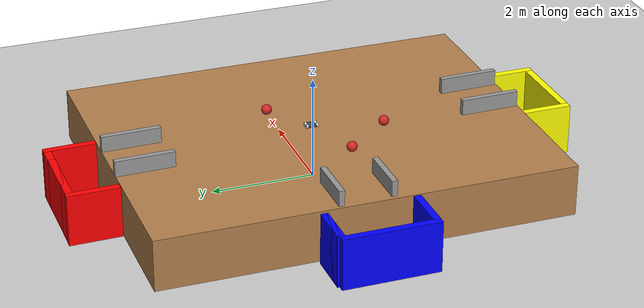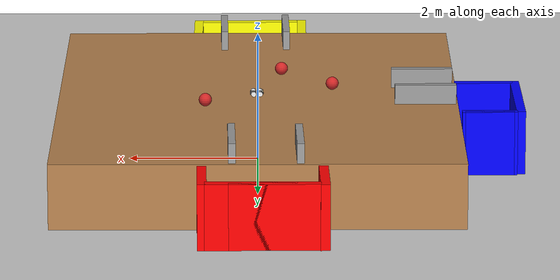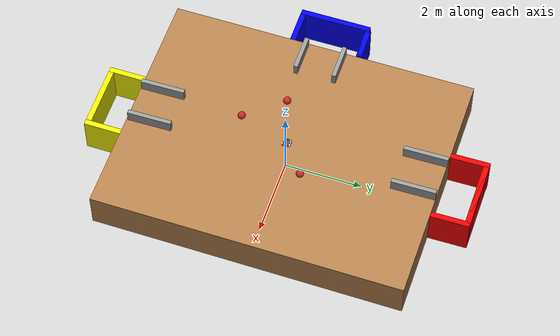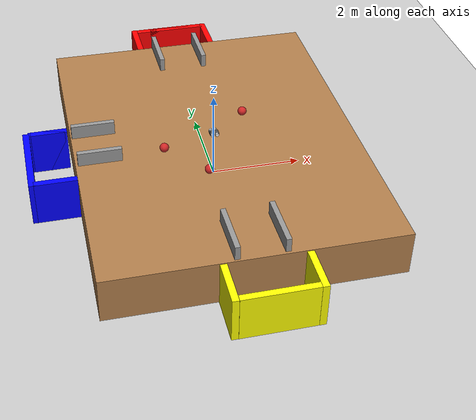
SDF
<sdf version="1.6">
 <world name="default">
  <light name="sun" type="directional">
   <pose>0 0 10 0 -0 0</pose>
   <diffuse>0.8 0.8 0.8 1</diffuse>
   <specular>0.2 0.2 0.2 1</specular>
   <attenuation>
    <range>1000</range>
    <constant>0.9</constant>
    <linear>0.01</linear>
    <quadratic>0.001</quadratic>
   </attenuation>
   <direction>-0.5 0.1 -0.9</direction>
  </light>
  <model name="ground_plane">
   <static>1</static>
   <link name="link">
    <collision name="collision">
     <geometry><plane><normal>0 0 1</normal><size>100 100</size></plane></geometry>
     <surface><friction><ode><mu>100</mu><mu2>50</mu2></ode></friction></surface>
    </collision>
    <visual name="visual">
     <cast_shadows>0</cast_shadows>
     <geometry><plane><normal>0 0 1</normal><size>100 100</size></plane></geometry>
     <material>
      <script><uri>file://media/materials/scripts/gazebo.material</uri><name>Gazebo/Grey</name></script>
     </material>
    </visual>
   </link>
  </model>
  <gravity>0 0 -9.8</gravity>
  <magnetic_field>6e-06 2.3e-05 -4.2e-05</magnetic_field>
  <atmosphere type="adiabatic"/>
  <physics name="default_physics" default="0" type="ode">
   <max_step_size>0.001</max_step_size>
   <real_time_factor>1</real_time_factor>
   <real_time_update_rate>1000</real_time_update_rate>
  </physics>
  <scene><ambient>0.4 0.4 0.4 1</ambient><background>0.7 0.7 0.7 1</background><shadows>1</shadows></scene>
  <spherical_coordinates>
   <surface_model>EARTH_WGS84</surface_model>
   <latitude_deg>0</latitude_deg>
   <longitude_deg>0</longitude_deg>
   <elevation>0</elevation>
   <heading_deg>0</heading_deg>
  </spherical_coordinates>
  <model name="myrobot">
   <link name="base_link">
    <inertial>
     <pose>1e-06 0 1e-06 0 -0 0</pose>
     <mass>1.00001</mass>
     <inertia><ixx>1</ixx><ixy>0</ixy><ixz>-5.39995e-08</ixz><iyy>1</iyy><iyz>0</iyz><izz>1</izz></inertia>
    </inertial>
    <collision name="base_link_collision">
     <geometry><box><size>0.205 0.155 0.02</size></box></geometry>
    </collision>
    <collision name="base_link_fixed_joint_lump__camera_link_collision_1">
     <pose>0.09 0 0.06 0 -0 0</pose>
     <geometry><box><size>0.01 0.05 0.05</size></box></geometry>
    </collision>
    <visual name="base_link_visual">
     <pose>0 0 0.04 0 -0 0</pose>
     <geometry><box><size>0.205 0.155 0.02</size></box></geometry>
     <material>
      <script><name>Gazebo/Road</name><uri>file://media/materials/scripts/gazebo.material</uri></script>
     </material>
    </visual>
    <visual name="base_link_fixed_joint_lump__camera_link_visual_1">
     <pose>0.09 0 0.06 0 -0 0</pose>
     <geometry><box><size>0.01 0.05 0.05</size></box></geometry>
     <material>
      <script><name>Gazebo/Residential</name><uri>file://media/materials/scripts/gazebo.material</uri></script>
     </material>
    </visual>
    <sensor name="camera1" type="camera">
     <update_rate>30</update_rate>
     <camera name="head">
      <horizontal_fov>1.08559</horizontal_fov>
      <image><width>320</width><height>240</height><format>R8G8B8</format></image>
      <clip><near>0.01</near><far>10</far></clip>
      <noise><type>gaussian</type><mean>0</mean><stddev>0.007</stddev></noise>
     </camera>
     <plugin name="camera_controller" filename="libgazebo_ros_camera.so">
      <alwaysOn>true</alwaysOn>
      <updateRate>0.0</updateRate>
      <cameraName>rrbot/camera1</cameraName>
      <imageTopicName>image_raw</imageTopicName>
      <cameraInfoTopicName>camera_info</cameraInfoTopicName>
      <frameName>camera_link</frameName>
      <hackBaseline>0.07</hackBaseline>
      <distortionK1>0.0</distortionK1>
      <distortionK2>0.0</distortionK2>
      <distortionK3>0.0</distortionK3>
      <distortionT1>0.0</distortionT1>
      <distortionT2>0.0</distortionT2>
      <robotNamespace>/</robotNamespace>
     </plugin>
     <pose>0.09 0 0.06 0 -0 0</pose>
    </sensor>
   </link>
   <link name="wheel_1">
    <pose>0.05 0.098 0.04 0 -0 0</pose>
    <inertial>
     <mass>0.01</mass>
     <inertia><ixx>1</ixx><ixy>0</ixy><ixz>0</ixz><iyy>1</iyy><iyz>0</iyz><izz>1</izz></inertia>
    </inertial>
    <collision name="wheel_1_collision">
     <geometry><cylinder><length>0.036</length><radius>0.04</radius></cylinder></geometry>
    </collision>
    <visual name="wheel_1_visual">
     <pose>0 0 0 3.14159 1.57079 -1.57089</pose>
     <geometry><cylinder><length>0.036</length><radius>0.04</radius></cylinder></geometry>
     <material>
      <script><name>Gazebo/White</name><uri>file://media/materials/scripts/gazebo.material</uri></script>
     </material>
    </visual>
   </link>
   <joint name="base_to_wheel1" type="revolute">
    <child>wheel_1</child>
    <parent>base_link</parent>
    <axis>
     <xyz>1 0 0</xyz>
     <limit><lower>-1e+16</lower><upper>1e+16</upper></limit>
     <dynamics><spring_reference>0</spring_reference><spring_stiffness>0</spring_stiffness></dynamics>
     <use_parent_model_frame>1</use_parent_model_frame>
    </axis>
   </joint>
   <link name="wheel_2">
    <pose>-0.05 0.098 0.04 0 -0 0</pose>
    <inertial>
     <mass>0.01</mass>
     <inertia><ixx>1</ixx><ixy>0</ixy><ixz>0</ixz><iyy>1</iyy><iyz>0</iyz><izz>1</izz></inertia>
    </inertial>
    <collision name="wheel_2_collision">
     <geometry><cylinder><length>0.036</length><radius>0.04</radius></cylinder></geometry>
    </collision>
    <visual name="wheel_2_visual">
     <pose>-0 0 0 3.14159 1.57079 -1.57089</pose>
     <geometry><cylinder><length>0.036</length><radius>0.04</radius></cylinder></geometry>
     <material>
      <script><name>Gazebo/White</name><uri>file://media/materials/scripts/gazebo.material</uri></script>
     </material>
    </visual>
   </link>
   <joint name="base_to_wheel2" type="revolute">
    <child>wheel_2</child>
    <parent>base_link</parent>
    <axis>
     <xyz>1 0 0</xyz>
     <limit><lower>-1e+16</lower><upper>1e+16</upper></limit>
     <dynamics><spring_reference>0</spring_reference><spring_stiffness>0</spring_stiffness></dynamics>
     <use_parent_model_frame>1</use_parent_model_frame>
    </axis>
   </joint>
   <link name="wheel_3">
    <pose>0.05 -0.098 0.04 0 -0 0</pose>
    <inertial>
     <mass>0.01</mass>
     <inertia><ixx>1</ixx><ixy>0</ixy><ixz>0</ixz><iyy>1</iyy><iyz>0</iyz><izz>1</izz></inertia>
    </inertial>
    <collision name="wheel_3_collision">
     <geometry><cylinder><length>0.036</length><radius>0.04</radius></cylinder></geometry>
    </collision>
    <visual name="wheel_3_visual">
     <pose>0 -0 0 3.14159 1.57079 -1.57089</pose>
     <geometry><cylinder><length>0.036</length><radius>0.04</radius></cylinder></geometry>
     <material>
      <script><name>Gazebo/White</name><uri>file://media/materials/scripts/gazebo.material</uri></script>
     </material>
    </visual>
   </link>
   <joint name="base_to_wheel3" type="revolute">
    <child>wheel_3</child>
    <parent>base_link</parent>
    <axis>
     <xyz>1 0 0</xyz>
     <limit><lower>-1e+16</lower><upper>1e+16</upper></limit>
     <dynamics><spring_reference>0</spring_reference><spring_stiffness>0</spring_stiffness></dynamics>
     <use_parent_model_frame>1</use_parent_model_frame>
    </axis>
   </joint>
   <link name="wheel_4">
    <pose>-0.05 -0.098 0.04 0 -0 0</pose>
    <inertial>
     <mass>0.01</mass>
     <inertia><ixx>1</ixx><ixy>0</ixy><ixz>0</ixz><iyy>1</iyy><iyz>0</iyz><izz>1</izz></inertia>
    </inertial>
    <collision name="wheel_4_collision">
     <geometry><cylinder><length>0.036</length><radius>0.04</radius></cylinder></geometry>
    </collision>
    <visual name="wheel_4_visual">
     <pose>-0 -0 0 3.14159 1.57079 -1.57089</pose>
     <geometry><cylinder><length>0.036</length><radius>0.04</radius></cylinder></geometry>
     <material>
      <script><name>Gazebo/White</name><uri>file://media/materials/scripts/gazebo.material</uri></script>
     </material>
    </visual>
   </link>
   <joint name="base_to_wheel4" type="revolute">
    <child>wheel_4</child>
    <parent>base_link</parent>
    <axis>
     <xyz>1 0 0</xyz>
     <limit><lower>-1e+16</lower><upper>1e+16</upper></limit>
     <dynamics><spring_reference>0</spring_reference><spring_stiffness>0</spring_stiffness></dynamics>
     <use_parent_model_frame>1</use_parent_model_frame>
    </axis>
   </joint>
   <plugin name="gazebo_ros_control" filename="libgazebo_ros_control.so">
    <legacyModeNS>true</legacyModeNS>
    <robotNamespace>/</robotNamespace>
   </plugin>
   <static>0</static>
   <plugin name="object_controller" filename="libgazebo_ros_planar_move.so">
    <commandTopic>cmd_vel</commandTopic>
    <odometryTopic>odom</odometryTopic>
    <odometryFrame>odom</odometryFrame>
    <odometryRate>20.0</odometryRate>
    <robotBaseFrame>base_link</robotBaseFrame>
    <robotNamespace>/</robotNamespace>
   </plugin>
   <pose>0.01895 0.032976 1.03 1e-06 -0 -3.10704</pose>
  </model>
  <model name="ball_blue_0">
   <link name="link">
    <pose>0 1.5 0.284585 0 -0 0</pose>
    <inertial>
     <mass>0.05</mass>
     <inertia><ixx>0.1</ixx><ixy>0</ixy><ixz>0</ixz><iyy>0.1</iyy><iyz>0</iyz><izz>0.1</izz></inertia>
    </inertial>
    <visual name="visual">
     <geometry><sphere><radius>0.1</radius></sphere></geometry>
     <material>
      <script><name>Gazebo/RedBright</name><uri>file://media/materials/scripts/gazebo.material</uri></script>
      <ambient>0 0 1 1</ambient>
      <diffuse>0 0 1 1</diffuse>
      <specular>0 0 1 1</specular>
      <emissive>0 0 0 1</emissive>
      <shader type="vertex"><normal_map>__default__</normal_map></shader>
     </material>
    </visual>
    <collision name="collision">
     <geometry><sphere><radius>0.1</radius></sphere></geometry>
     <surface>
      <friction>
       <ode><mu>1</mu><mu2>1</mu2><fdir1>0 0 0</fdir1><slip1>0</slip1><slip2>0</slip2></ode>
       <torsional>
        <coefficient>1</coefficient>
        <patch_radius>0</patch_radius>
        <surface_radius>0</surface_radius>
        <use_patch_radius>1</use_patch_radius>
        <ode><slip>0</slip></ode>
       </torsional>
      </friction>
      <bounce><restitution_coefficient>0.5</restitution_coefficient><threshold>0.001</threshold></bounce>
      <contact>
       <collide_without_contact>0</collide_without_contact>
       <collide_without_contact_bitmask>1</collide_without_contact_bitmask>
       <collide_bitmask>1</collide_bitmask>
       <ode>
        <soft_cfm>0</soft_cfm>
        <soft_erp>0.2</soft_erp>
        <kp>1e+13</kp>
        <kd>1</kd>
        <max_vel>10</max_vel>
        <min_depth>0</min_depth>
       </ode>
       <bullet>
        <split_impulse>1</split_impulse>
        <split_impulse_penetration_threshold>-0.01</split_impulse_penetration_threshold>
        <soft_cfm>0</soft_cfm>
        <soft_erp>0.2</soft_erp>
        <kp>1e+13</kp>
        <kd>1</kd>
       </bullet>
      </contact>
     </surface>
    </collision>
   </link>
   <static>0</static>
   <pose>-1.15815 -1.84598 0.835415 0 -0 0</pose>
  </model>
  <model name="ball_red">
   <link name="link">
    <pose>0 1.5 0.284585 0 -0 0</pose>
    <inertial>
     <mass>0.05</mass>
     <inertia><ixx>0.1</ixx><ixy>0</ixy><ixz>0</ixz><iyy>0.1</iyy><iyz>0</iyz><izz>0.1</izz></inertia>
    </inertial>
    <visual name="visual">
     <geometry><sphere><radius>0.1</radius></sphere></geometry>
     <material>
      <script><name>Gazebo/RedBright</name><uri>file://media/materials/scripts/gazebo.material</uri></script>
      <ambient>1 0 0 1</ambient>
      <diffuse>1 0 0 1</diffuse>
      <specular>1 0 0 1</specular>
      <emissive>0 0 0 1</emissive>
      <shader type="vertex"><normal_map>__default__</normal_map></shader>
     </material>
    </visual>
    <collision name="collision">
     <geometry><sphere><radius>0.1</radius></sphere></geometry>
     <surface>
      <friction>
       <ode><mu>1</mu><mu2>1</mu2><fdir1>0 0 0</fdir1><slip1>0</slip1><slip2>0</slip2></ode>
       <torsional>
        <coefficient>1</coefficient>
        <patch_radius>0</patch_radius>
        <surface_radius>0</surface_radius>
        <use_patch_radius>1</use_patch_radius>
        <ode><slip>0</slip></ode>
       </torsional>
      </friction>
      <bounce><restitution_coefficient>0.5</restitution_coefficient><threshold>0.001</threshold></bounce>
      <contact>
       <collide_without_contact>0</collide_without_contact>
       <collide_without_contact_bitmask>1</collide_without_contact_bitmask>
       <collide_bitmask>1</collide_bitmask>
       <ode>
        <soft_cfm>0</soft_cfm>
        <soft_erp>0.2</soft_erp>
        <kp>1e+13</kp>
        <kd>1</kd>
        <max_vel>10</max_vel>
        <min_depth>0</min_depth>
       </ode>
       <bullet>
        <split_impulse>1</split_impulse>
        <split_impulse_penetration_threshold>-0.01</split_impulse_penetration_threshold>
        <soft_cfm>0</soft_cfm>
        <soft_erp>0.2</soft_erp>
        <kp>1e+13</kp>
        <kd>1</kd>
       </bullet>
      </contact>
     </surface>
    </collision>
   </link>
   <static>0</static>
   <pose>0.81028 -0.852629 0.835415 0 -0 0</pose>
  </model>
  <model name="ball_yellow_0">
   <link name="link">
    <pose>0 1.5 0.284585 0 -0 0</pose>
    <inertial>
     <mass>0.05</mass>
     <inertia><ixx>0.1</ixx><ixy>0</ixy><ixz>0</ixz><iyy>0.1</iyy><iyz>0</iyz><izz>0.1</izz></inertia>
    </inertial>
    <visual name="visual">
     <geometry><sphere><radius>0.1</radius></sphere></geometry>
     <material>
      <script><name>Gazebo/RedBright</name><uri>file://media/materials/scripts/gazebo.material</uri></script>
      <ambient>1 1 0 1</ambient>
      <diffuse>1 1 0 1</diffuse>
      <specular>1 1 0 1</specular>
      <emissive>0 0 0 1</emissive>
      <shader type="vertex"><normal_map>__default__</normal_map></shader>
     </material>
    </visual>
    <collision name="collision">
     <geometry><sphere><radius>0.1</radius></sphere></geometry>
     <surface>
      <friction>
       <ode><mu>1</mu><mu2>1</mu2><fdir1>0 0 0</fdir1><slip1>0</slip1><slip2>0</slip2></ode>
       <torsional>
        <coefficient>1</coefficient>
        <patch_radius>0</patch_radius>
        <surface_radius>0</surface_radius>
        <use_patch_radius>1</use_patch_radius>
        <ode><slip>0</slip></ode>
       </torsional>
      </friction>
      <bounce><restitution_coefficient>0.5</restitution_coefficient><threshold>0.001</threshold></bounce>
      <contact>
       <collide_without_contact>0</collide_without_contact>
       <collide_without_contact_bitmask>1</collide_without_contact_bitmask>
       <collide_bitmask>1</collide_bitmask>
       <ode>
        <soft_cfm>0</soft_cfm>
        <soft_erp>0.2</soft_erp>
        <kp>1e+13</kp>
        <kd>1</kd>
        <max_vel>10</max_vel>
        <min_depth>0</min_depth>
       </ode>
       <bullet>
        <split_impulse>1</split_impulse>
        <split_impulse_penetration_threshold>-0.01</split_impulse_penetration_threshold>
        <soft_cfm>0</soft_cfm>
        <soft_erp>0.2</soft_erp>
        <kp>1e+13</kp>
        <kd>1</kd>
       </bullet>
      </contact>
     </surface>
    </collision>
   </link>
   <static>0</static>
   <pose>-0.370193 -2.78153 0.835415 0 -0 0</pose>
  </model>
  <model name="unit_box_1_clone_0_0">
   <link name="link">
    <inertial>
     <mass>1</mass>
     <inertia>
      <ixx>0.166667</ixx>
      <ixy>0</ixy>
      <ixz>0</ixz>
      <iyy>0.166667</iyy>
      <iyz>0</iyz>
      <izz>0.166667</izz>
     </inertia>
    </inertial>
    <visual name="visual">
     <geometry><box><size>0.140979 1.55729 1</size></box></geometry>
     <material>
      <script><name>Gazebo/Grey</name><uri>file://media/materials/scripts/gazebo.material</uri></script>
      <ambient>1 1 0 1</ambient>
      <diffuse>1 1 0 1</diffuse>
      <specular>0.1 0.1 0.01 1</specular>
      <emissive>0 0 0 1</emissive>
      <shader type="vertex"><normal_map>__default__</normal_map></shader>
     </material>
    </visual>
    <collision name="collision">
     <geometry><box><size>0.140979 1.55729 1</size></box></geometry>
     <surface>
      <friction>
       <ode><mu>1</mu><mu2>1</mu2><fdir1>0 0 0</fdir1><slip1>0</slip1><slip2>0</slip2></ode>
       <torsional>
        <coefficient>1</coefficient>
        <patch_radius>0</patch_radius>
        <surface_radius>0</surface_radius>
        <use_patch_radius>1</use_patch_radius>
        <ode><slip>0</slip></ode>
       </torsional>
      </friction>
      <bounce><restitution_coefficient>0</restitution_coefficient><threshold>1e+06</threshold></bounce>
      <contact>
       <collide_without_contact>0</collide_without_contact>
       <collide_without_contact_bitmask>1</collide_without_contact_bitmask>
       <collide_bitmask>1</collide_bitmask>
       <ode>
        <soft_cfm>0</soft_cfm>
        <soft_erp>0.2</soft_erp>
        <kp>1e+13</kp>
        <kd>1</kd>
        <max_vel>0.01</max_vel>
        <min_depth>0</min_depth>
       </ode>
       <bullet>
        <split_impulse>1</split_impulse>
        <split_impulse_penetration_threshold>-0.01</split_impulse_penetration_threshold>
        <soft_cfm>0</soft_cfm>
        <soft_erp>0.2</soft_erp>
        <kp>1e+13</kp>
        <kd>1</kd>
       </bullet>
      </contact>
     </surface>
    </collision>
   </link>
   <static>1</static>
   <pose>0.135121 -4.90148 0.5 0 -0 1.5767</pose>
  </model>
  <model name="unit_box_1_0">
   <link name="link">
    <inertial>
     <mass>1</mass>
     <inertia>
      <ixx>0.166667</ixx>
      <ixy>0</ixy>
      <ixz>0</ixz>
      <iyy>0.166667</iyy>
      <iyz>0</iyz>
      <izz>0.166667</izz>
     </inertia>
    </inertial>
    <visual name="visual">
     <geometry><box><size>0.140979 1 1</size></box></geometry>
     <material>
      <script><name>Gazebo/Grey</name><uri>file://media/materials/scripts/gazebo.material</uri></script>
      <ambient>1 1 0 1</ambient>
      <diffuse>1 1 0 1</diffuse>
      <specular>0.01 0.01 0.01 1</specular>
      <emissive>0 0 0 1</emissive>
      <shader type="vertex"><normal_map>__default__</normal_map></shader>
     </material>
    </visual>
    <collision name="collision">
     <geometry><box><size>0.140979 1 1</size></box></geometry>
     <surface>
      <friction>
       <ode><mu>1</mu><mu2>1</mu2><fdir1>0 0 0</fdir1><slip1>0</slip1><slip2>0</slip2></ode>
       <torsional>
        <coefficient>1</coefficient>
        <patch_radius>0</patch_radius>
        <surface_radius>0</surface_radius>
        <use_patch_radius>1</use_patch_radius>
        <ode><slip>0</slip></ode>
       </torsional>
      </friction>
      <bounce><restitution_coefficient>0</restitution_coefficient><threshold>1e+06</threshold></bounce>
      <contact>
       <collide_without_contact>0</collide_without_contact>
       <collide_without_contact_bitmask>1</collide_without_contact_bitmask>
       <collide_bitmask>1</collide_bitmask>
       <ode>
        <soft_cfm>0</soft_cfm>
        <soft_erp>0.2</soft_erp>
        <kp>1e+13</kp>
        <kd>1</kd>
        <max_vel>0.01</max_vel>
        <min_depth>0</min_depth>
       </ode>
       <bullet>
        <split_impulse>1</split_impulse>
        <split_impulse_penetration_threshold>-0.01</split_impulse_penetration_threshold>
        <soft_cfm>0</soft_cfm>
        <soft_erp>0.2</soft_erp>
        <kp>1e+13</kp>
        <kd>1</kd>
       </bullet>
      </contact>
     </surface>
    </collision>
   </link>
   <static>1</static>
   <pose>-0.714841 -4.4752 0.5 0 -0 0</pose>
  </model>
  <model name="unit_box_1_0_clone">
   <link name="link">
    <inertial>
     <mass>1</mass>
     <inertia>
      <ixx>0.166667</ixx>
      <ixy>0</ixy>
      <ixz>0</ixz>
      <iyy>0.166667</iyy>
      <iyz>0</iyz>
      <izz>0.166667</izz>
     </inertia>
    </inertial>
    <visual name="visual">
     <geometry><box><size>0.140979 1 1</size></box></geometry>
     <material>
      <script><name>Gazebo/Grey</name><uri>file://media/materials/scripts/gazebo.material</uri></script>
      <ambient>1 1 0 1</ambient>
      <diffuse>1 1 0 1</diffuse>
      <specular>0.01 0.01 0.01 1</specular>
      <emissive>0 0 0 1</emissive>
      <shader type="vertex"><normal_map>__default__</normal_map></shader>
     </material>
    </visual>
    <collision name="collision">
     <geometry><box><size>0.140979 1 1</size></box></geometry>
     <surface>
      <friction>
       <ode><mu>1</mu><mu2>1</mu2><fdir1>0 0 0</fdir1><slip1>0</slip1><slip2>0</slip2></ode>
       <torsional>
        <coefficient>1</coefficient>
        <patch_radius>0</patch_radius>
        <surface_radius>0</surface_radius>
        <use_patch_radius>1</use_patch_radius>
        <ode><slip>0</slip></ode>
       </torsional>
      </friction>
      <bounce><restitution_coefficient>0</restitution_coefficient><threshold>1e+06</threshold></bounce>
      <contact>
       <collide_without_contact>0</collide_without_contact>
       <collide_without_contact_bitmask>1</collide_without_contact_bitmask>
       <collide_bitmask>1</collide_bitmask>
       <ode>
        <soft_cfm>0</soft_cfm>
        <soft_erp>0.2</soft_erp>
        <kp>1e+13</kp>
        <kd>1</kd>
        <max_vel>0.01</max_vel>
        <min_depth>0</min_depth>
       </ode>
       <bullet>
        <split_impulse>1</split_impulse>
        <split_impulse_penetration_threshold>-0.01</split_impulse_penetration_threshold>
        <soft_cfm>0</soft_cfm>
        <soft_erp>0.2</soft_erp>
        <kp>1e+13</kp>
        <kd>1</kd>
       </bullet>
      </contact>
     </surface>
    </collision>
   </link>
   <static>1</static>
   <pose>0.98327 -4.46945 0.5 0 -0 0</pose>
  </model>
  <model name="unit_box_1_0_clone_0_0_clone_clone_0">
   <link name="link">
    <inertial>
     <mass>1</mass>
     <inertia>
      <ixx>0.166667</ixx>
      <ixy>0</ixy>
      <ixz>0</ixz>
      <iyy>0.166667</iyy>
      <iyz>0</iyz>
      <izz>0.166667</izz>
     </inertia>
    </inertial>
    <visual name="visual">
     <geometry><box><size>0.140979 1.86158 1</size></box></geometry>
     <material>
      <script><name>Gazebo/Grey</name><uri>file://media/materials/scripts/gazebo.material</uri></script>
      <ambient>0 0 1 1</ambient>
      <diffuse>0 0 1 1</diffuse>
      <specular>0.01 0.01 0.01 1</specular>
      <emissive>0 0 0 1</emissive>
      <shader type="vertex"><normal_map>__default__</normal_map></shader>
     </material>
    </visual>
    <collision name="collision">
     <geometry><box><size>0.140979 1.86158 1</size></box></geometry>
     <surface>
      <friction>
       <ode><mu>1</mu><mu2>1</mu2><fdir1>0 0 0</fdir1><slip1>0</slip1><slip2>0</slip2></ode>
       <torsional>
        <coefficient>1</coefficient>
        <patch_radius>0</patch_radius>
        <surface_radius>0</surface_radius>
        <use_patch_radius>1</use_patch_radius>
        <ode><slip>0</slip></ode>
       </torsional>
      </friction>
      <bounce><restitution_coefficient>0</restitution_coefficient><threshold>1e+06</threshold></bounce>
      <contact>
       <collide_without_contact>0</collide_without_contact>
       <collide_without_contact_bitmask>1</collide_without_contact_bitmask>
       <collide_bitmask>1</collide_bitmask>
       <ode>
        <soft_cfm>0</soft_cfm>
        <soft_erp>0.2</soft_erp>
        <kp>1e+13</kp>
        <kd>1</kd>
        <max_vel>0.01</max_vel>
        <min_depth>0</min_depth>
       </ode>
       <bullet>
        <split_impulse>1</split_impulse>
        <split_impulse_penetration_threshold>-0.01</split_impulse_penetration_threshold>
        <soft_cfm>0</soft_cfm>
        <soft_erp>0.2</soft_erp>
        <kp>1e+13</kp>
        <kd>1</kd>
       </bullet>
      </contact>
     </surface>
    </collision>
   </link>
   <static>1</static>
   <pose>-4.03725 0.011487 0.5 0 -0 0.00392</pose>
  </model>
  <model name="unit_box_1_0_clone_0_0_clone_0">
   <link name="link">
    <inertial>
     <mass>1</mass>
     <inertia>
      <ixx>0.166667</ixx>
      <ixy>0</ixy>
      <ixz>0</ixz>
      <iyy>0.166667</iyy>
      <iyz>0</iyz>
      <izz>0.166667</izz>
     </inertia>
    </inertial>
    <visual name="visual">
     <geometry><box><size>0.140979 1 1</size></box></geometry>
     <material>
      <script><name>Gazebo/Grey</name><uri>file://media/materials/scripts/gazebo.material</uri></script>
      <ambient>0 0 1 1</ambient>
      <diffuse>0 0 1 1</diffuse>
      <specular>0.01 0.01 0.01 1</specular>
      <emissive>0 0 0 1</emissive>
      <shader type="vertex"><normal_map>__default__</normal_map></shader>
     </material>
    </visual>
    <collision name="collision">
     <geometry><box><size>0.140979 1 1</size></box></geometry>
     <surface>
      <friction>
       <ode><mu>1</mu><mu2>1</mu2><fdir1>0 0 0</fdir1><slip1>0</slip1><slip2>0</slip2></ode>
       <torsional>
        <coefficient>1</coefficient>
        <patch_radius>0</patch_radius>
        <surface_radius>0</surface_radius>
        <use_patch_radius>1</use_patch_radius>
        <ode><slip>0</slip></ode>
       </torsional>
      </friction>
      <bounce><restitution_coefficient>0</restitution_coefficient><threshold>1e+06</threshold></bounce>
      <contact>
       <collide_without_contact>0</collide_without_contact>
       <collide_without_contact_bitmask>1</collide_without_contact_bitmask>
       <collide_bitmask>1</collide_bitmask>
       <ode>
        <soft_cfm>0</soft_cfm>
        <soft_erp>0.2</soft_erp>
        <kp>1e+13</kp>
        <kd>1</kd>
        <max_vel>0.01</max_vel>
        <min_depth>0</min_depth>
       </ode>
       <bullet>
        <split_impulse>1</split_impulse>
        <split_impulse_penetration_threshold>-0.01</split_impulse_penetration_threshold>
        <soft_cfm>0</soft_cfm>
        <soft_erp>0.2</soft_erp>
        <kp>1e+13</kp>
        <kd>1</kd>
       </bullet>
      </contact>
     </surface>
    </collision>
   </link>
   <static>1</static>
   <pose>-3.50158 -0.849756 0.5 0 0 -1.56601</pose>
  </model>
  <model name="unit_box_1_0_clone_0_0_0_clone_0">
   <link name="link">
    <inertial>
     <mass>1</mass>
     <inertia>
      <ixx>0.166667</ixx>
      <ixy>0</ixy>
      <ixz>0</ixz>
      <iyy>0.166667</iyy>
      <iyz>0</iyz>
      <izz>0.166667</izz>
     </inertia>
    </inertial>
    <visual name="visual">
     <geometry><box><size>0.140979 1 1</size></box></geometry>
     <material>
      <script><name>Gazebo/Grey</name><uri>file://media/materials/scripts/gazebo.material</uri></script>
      <ambient>1 0 0 1</ambient>
      <diffuse>1 0 0 1</diffuse>
      <specular>0.01 0.01 0.01 1</specular>
      <emissive>0 0 0 1</emissive>
      <shader type="vertex"><normal_map>__default__</normal_map></shader>
     </material>
    </visual>
    <collision name="collision">
     <geometry><box><size>0.140979 1 1</size></box></geometry>
     <surface>
      <friction>
       <ode><mu>1</mu><mu2>1</mu2><fdir1>0 0 0</fdir1><slip1>0</slip1><slip2>0</slip2></ode>
       <torsional>
        <coefficient>1</coefficient>
        <patch_radius>0</patch_radius>
        <surface_radius>0</surface_radius>
        <use_patch_radius>1</use_patch_radius>
        <ode><slip>0</slip></ode>
       </torsional>
      </friction>
      <bounce><restitution_coefficient>0</restitution_coefficient><threshold>1e+06</threshold></bounce>
      <contact>
       <collide_without_contact>0</collide_without_contact>
       <collide_without_contact_bitmask>1</collide_without_contact_bitmask>
       <collide_bitmask>1</collide_bitmask>
       <ode>
        <soft_cfm>0</soft_cfm>
        <soft_erp>0.2</soft_erp>
        <kp>1e+13</kp>
        <kd>1</kd>
        <max_vel>0.01</max_vel>
        <min_depth>0</min_depth>
       </ode>
       <bullet>
        <split_impulse>1</split_impulse>
        <split_impulse_penetration_threshold>-0.01</split_impulse_penetration_threshold>
        <soft_cfm>0</soft_cfm>
        <soft_erp>0.2</soft_erp>
        <kp>1e+13</kp>
        <kd>1</kd>
       </bullet>
      </contact>
     </surface>
    </collision>
   </link>
   <static>1</static>
   <pose>0.818093 4.49011 0.5 0 0 -3.12352</pose>
  </model>
  <model name="unit_box_1_0_clone_0_0_0_clone_0_clone">
   <link name="link">
    <inertial>
     <mass>1</mass>
     <inertia>
      <ixx>0.166667</ixx>
      <ixy>0</ixy>
      <ixz>0</ixz>
      <iyy>0.166667</iyy>
      <iyz>0</iyz>
      <izz>0.166667</izz>
     </inertia>
    </inertial>
    <visual name="visual">
     <geometry><box><size>0.140979 1 1</size></box></geometry>
     <material>
      <script><name>Gazebo/Grey</name><uri>file://media/materials/scripts/gazebo.material</uri></script>
      <ambient>1 0 0 1</ambient>
      <diffuse>1 0 0 1</diffuse>
      <specular>0.01 0.01 0.01 1</specular>
      <emissive>0 0 0 1</emissive>
      <shader type="vertex"><normal_map>__default__</normal_map></shader>
     </material>
    </visual>
    <collision name="collision">
     <geometry><box><size>0.140979 1 1</size></box></geometry>
     <surface>
      <friction>
       <ode><mu>1</mu><mu2>1</mu2><fdir1>0 0 0</fdir1><slip1>0</slip1><slip2>0</slip2></ode>
       <torsional>
        <coefficient>1</coefficient>
        <patch_radius>0</patch_radius>
        <surface_radius>0</surface_radius>
        <use_patch_radius>1</use_patch_radius>
        <ode><slip>0</slip></ode>
       </torsional>
      </friction>
      <bounce><restitution_coefficient>0</restitution_coefficient><threshold>1e+06</threshold></bounce>
      <contact>
       <collide_without_contact>0</collide_without_contact>
       <collide_without_contact_bitmask>1</collide_without_contact_bitmask>
       <collide_bitmask>1</collide_bitmask>
       <ode>
        <soft_cfm>0</soft_cfm>
        <soft_erp>0.2</soft_erp>
        <kp>1e+13</kp>
        <kd>1</kd>
        <max_vel>0.01</max_vel>
        <min_depth>0</min_depth>
       </ode>
       <bullet>
        <split_impulse>1</split_impulse>
        <split_impulse_penetration_threshold>-0.01</split_impulse_penetration_threshold>
        <soft_cfm>0</soft_cfm>
        <soft_erp>0.2</soft_erp>
        <kp>1e+13</kp>
        <kd>1</kd>
       </bullet>
      </contact>
     </surface>
    </collision>
   </link>
   <static>1</static>
   <pose>-0.973592 4.49917 0.5 0 0 -3.12352</pose>
  </model>
  <model name="unit_box_1_0_clone_0_0_0_clone_0_clone_clone_0_0_clone">
   <link name="link">
    <inertial>
     <mass>1</mass>
     <inertia>
      <ixx>0.166667</ixx>
      <ixy>0</ixy>
      <ixz>0</ixz>
      <iyy>0.166667</iyy>
      <iyz>0</iyz>
      <izz>0.166667</izz>
     </inertia>
    </inertial>
    <visual name="visual">
     <geometry><box><size>0.108024 1.13818 0.303847</size></box></geometry>
     <material>
      <script><name>Gazebo/Grey</name><uri>file://media/materials/scripts/gazebo.material</uri></script>
      <ambient>0.3 0.3 0.3 1</ambient>
      <diffuse>0.7 0.7 0.7 1</diffuse>
      <specular>0.01 0.01 0.01 1</specular>
      <emissive>0 0 0 1</emissive>
      <shader type="vertex"><normal_map>__default__</normal_map></shader>
     </material>
    </visual>
    <collision name="collision">
     <geometry><box><size>0.108024 1.13818 0.303847</size></box></geometry>
     <surface>
      <friction>
       <ode><mu>1</mu><mu2>1</mu2><fdir1>0 0 0</fdir1><slip1>0</slip1><slip2>0</slip2></ode>
       <torsional>
        <coefficient>1</coefficient>
        <patch_radius>0</patch_radius>
        <surface_radius>0</surface_radius>
        <use_patch_radius>1</use_patch_radius>
        <ode><slip>0</slip></ode>
       </torsional>
      </friction>
      <bounce><restitution_coefficient>0</restitution_coefficient><threshold>1e+06</threshold></bounce>
      <contact>
       <collide_without_contact>0</collide_without_contact>
       <collide_without_contact_bitmask>1</collide_without_contact_bitmask>
       <collide_bitmask>1</collide_bitmask>
       <ode>
        <soft_cfm>0</soft_cfm>
        <soft_erp>0.2</soft_erp>
        <kp>1e+13</kp>
        <kd>1</kd>
        <max_vel>0.01</max_vel>
        <min_depth>0</min_depth>
       </ode>
       <bullet>
        <split_impulse>1</split_impulse>
        <split_impulse_penetration_threshold>-0.01</split_impulse_penetration_threshold>
        <soft_cfm>0</soft_cfm>
        <soft_erp>0.2</soft_erp>
        <kp>1e+13</kp>
        <kd>1</kd>
       </bullet>
      </contact>
     </surface>
    </collision>
   </link>
   <static>1</static>
   <pose>0.388545 3.42622 1.18504 0 0 -3.12352</pose>
  </model>
  <model name="unit_box_1_0_clone_0_0_0_clone_0_clone_clone_0_0_clone_clone">
   <link name="link">
    <inertial>
     <mass>1</mass>
     <inertia>
      <ixx>0.166667</ixx>
      <ixy>0</ixy>
      <ixz>0</ixz>
      <iyy>0.166667</iyy>
      <iyz>0</iyz>
      <izz>0.166667</izz>
     </inertia>
    </inertial>
    <visual name="visual">
     <geometry><box><size>0.108024 1.13818 0.303847</size></box></geometry>
     <material>
      <script><name>Gazebo/Grey</name><uri>file://media/materials/scripts/gazebo.material</uri></script>
      <ambient>0.3 0.3 0.3 1</ambient>
      <diffuse>0.7 0.7 0.7 1</diffuse>
      <specular>0.01 0.01 0.01 1</specular>
      <emissive>0 0 0 1</emissive>
      <shader type="vertex"><normal_map>__default__</normal_map></shader>
     </material>
    </visual>
    <collision name="collision">
     <geometry><box><size>0.108024 1.13818 0.303847</size></box></geometry>
     <surface>
      <friction>
       <ode><mu>1</mu><mu2>1</mu2><fdir1>0 0 0</fdir1><slip1>0</slip1><slip2>0</slip2></ode>
       <torsional>
        <coefficient>1</coefficient>
        <patch_radius>0</patch_radius>
        <surface_radius>0</surface_radius>
        <use_patch_radius>1</use_patch_radius>
        <ode><slip>0</slip></ode>
       </torsional>
      </friction>
      <bounce><restitution_coefficient>0</restitution_coefficient><threshold>1e+06</threshold></bounce>
      <contact>
       <collide_without_contact>0</collide_without_contact>
       <collide_without_contact_bitmask>1</collide_without_contact_bitmask>
       <collide_bitmask>1</collide_bitmask>
       <ode>
        <soft_cfm>0</soft_cfm>
        <soft_erp>0.2</soft_erp>
        <kp>1e+13</kp>
        <kd>1</kd>
        <max_vel>0.01</max_vel>
        <min_depth>0</min_depth>
       </ode>
       <bullet>
        <split_impulse>1</split_impulse>
        <split_impulse_penetration_threshold>-0.01</split_impulse_penetration_threshold>
        <soft_cfm>0</soft_cfm>
        <soft_erp>0.2</soft_erp>
        <kp>1e+13</kp>
        <kd>1</kd>
       </bullet>
      </contact>
     </surface>
    </collision>
   </link>
   <static>1</static>
   <pose>0.546156 -3.39097 1.18504 0 0 -3.12352</pose>
  </model>
  <model name="unit_box_1_0_clone_0_0_0_clone_0_clone_clone_0_0_clone_clone_0">
   <link name="link">
    <inertial>
     <mass>1</mass>
     <inertia>
      <ixx>0.166667</ixx>
      <ixy>0</ixy>
      <ixz>0</ixz>
      <iyy>0.166667</iyy>
      <iyz>0</iyz>
      <izz>0.166667</izz>
     </inertia>
    </inertial>
    <visual name="visual">
     <geometry><box><size>0.108024 1.13818 0.303847</size></box></geometry>
     <material>
      <script><name>Gazebo/Grey</name><uri>file://media/materials/scripts/gazebo.material</uri></script>
      <ambient>0.3 0.3 0.3 1</ambient>
      <diffuse>0.7 0.7 0.7 1</diffuse>
      <specular>0.01 0.01 0.01 1</specular>
      <emissive>0 0 0 1</emissive>
      <shader type="vertex"><normal_map>__default__</normal_map></shader>
     </material>
    </visual>
    <collision name="collision">
     <geometry><box><size>0.108024 1.13818 0.303847</size></box></geometry>
     <surface>
      <friction>
       <ode><mu>1</mu><mu2>1</mu2><fdir1>0 0 0</fdir1><slip1>0</slip1><slip2>0</slip2></ode>
       <torsional>
        <coefficient>1</coefficient>
        <patch_radius>0</patch_radius>
        <surface_radius>0</surface_radius>
        <use_patch_radius>1</use_patch_radius>
        <ode><slip>0</slip></ode>
       </torsional>
      </friction>
      <bounce><restitution_coefficient>0</restitution_coefficient><threshold>1e+06</threshold></bounce>
      <contact>
       <collide_without_contact>0</collide_without_contact>
       <collide_without_contact_bitmask>1</collide_without_contact_bitmask>
       <collide_bitmask>1</collide_bitmask>
       <ode>
        <soft_cfm>0</soft_cfm>
        <soft_erp>0.2</soft_erp>
        <kp>1e+13</kp>
        <kd>1</kd>
        <max_vel>0.01</max_vel>
        <min_depth>0</min_depth>
       </ode>
       <bullet>
        <split_impulse>1</split_impulse>
        <split_impulse_penetration_threshold>-0.01</split_impulse_penetration_threshold>
        <soft_cfm>0</soft_cfm>
        <soft_erp>0.2</soft_erp>
        <kp>1e+13</kp>
        <kd>1</kd>
       </bullet>
      </contact>
     </surface>
    </collision>
   </link>
   <static>1</static>
   <pose>-0.448416 -3.4042 1.18504 0 0 -3.12352</pose>
  </model>
  <model name="unit_box_1_0_clone_0_0_0_clone_0_clone_clone_0_0_clone_clone_1_clone">
   <link name="link">
    <inertial>
     <mass>1</mass>
     <inertia>
      <ixx>0.166667</ixx>
      <ixy>0</ixy>
      <ixz>0</ixz>
      <iyy>0.166667</iyy>
      <iyz>0</iyz>
      <izz>0.166667</izz>
     </inertia>
    </inertial>
    <visual name="visual">
     <geometry><box><size>0.108024 0.946957 0.303847</size></box></geometry>
     <material>
      <script><name>Gazebo/Grey</name><uri>file://media/materials/scripts/gazebo.material</uri></script>
      <ambient>0.3 0.3 0.3 1</ambient>
      <diffuse>0.7 0.7 0.7 1</diffuse>
      <specular>0.01 0.01 0.01 1</specular>
      <emissive>0 0 0 1</emissive>
      <shader type="vertex"><normal_map>__default__</normal_map></shader>
     </material>
    </visual>
    <collision name="collision">
     <geometry><box><size>0.108024 0.946957 0.303847</size></box></geometry>
     <surface>
      <friction>
       <ode><mu>1</mu><mu2>1</mu2><fdir1>0 0 0</fdir1><slip1>0</slip1><slip2>0</slip2></ode>
       <torsional>
        <coefficient>1</coefficient>
        <patch_radius>0</patch_radius>
        <surface_radius>0</surface_radius>
        <use_patch_radius>1</use_patch_radius>
        <ode><slip>0</slip></ode>
       </torsional>
      </friction>
      <bounce><restitution_coefficient>0</restitution_coefficient><threshold>1e+06</threshold></bounce>
      <contact>
       <collide_without_contact>0</collide_without_contact>
       <collide_without_contact_bitmask>1</collide_without_contact_bitmask>
       <collide_bitmask>1</collide_bitmask>
       <ode>
        <soft_cfm>0</soft_cfm>
        <soft_erp>0.2</soft_erp>
        <kp>1e+13</kp>
        <kd>1</kd>
        <max_vel>0.01</max_vel>
        <min_depth>0</min_depth>
       </ode>
       <bullet>
        <split_impulse>1</split_impulse>
        <split_impulse_penetration_threshold>-0.01</split_impulse_penetration_threshold>
        <soft_cfm>0</soft_cfm>
        <soft_erp>0.2</soft_erp>
        <kp>1e+13</kp>
        <kd>1</kd>
       </bullet>
      </contact>
     </surface>
    </collision>
   </link>
   <static>1</static>
   <pose>-2.58213 0.565169 1.18504 0 0 -1.56608</pose>
  </model>
  <model name="unit_box_1_0_clone_0_0_0_clone_0_clone_clone_0_0_clone_clone_1_clone_clone">
   <link name="link">
    <inertial>
     <mass>1</mass>
     <inertia>
      <ixx>0.166667</ixx>
      <ixy>0</ixy>
      <ixz>0</ixz>
      <iyy>0.166667</iyy>
      <iyz>0</iyz>
      <izz>0.166667</izz>
     </inertia>
    </inertial>
    <visual name="visual">
     <geometry><box><size>0.108024 0.946957 0.303847</size></box></geometry>
     <material>
      <script><name>Gazebo/Grey</name><uri>file://media/materials/scripts/gazebo.material</uri></script>
      <ambient>0.3 0.3 0.3 1</ambient>
      <diffuse>0.7 0.7 0.7 1</diffuse>
      <specular>0.01 0.01 0.01 1</specular>
      <emissive>0 0 0 1</emissive>
      <shader type="vertex"><normal_map>__default__</normal_map></shader>
     </material>
    </visual>
    <collision name="collision">
     <geometry><box><size>0.108024 0.946957 0.303847</size></box></geometry>
     <surface>
      <friction>
       <ode><mu>1</mu><mu2>1</mu2><fdir1>0 0 0</fdir1><slip1>0</slip1><slip2>0</slip2></ode>
       <torsional>
        <coefficient>1</coefficient>
        <patch_radius>0</patch_radius>
        <surface_radius>0</surface_radius>
        <use_patch_radius>1</use_patch_radius>
        <ode><slip>0</slip></ode>
       </torsional>
      </friction>
      <bounce><restitution_coefficient>0</restitution_coefficient><threshold>1e+06</threshold></bounce>
      <contact>
       <collide_without_contact>0</collide_without_contact>
       <collide_without_contact_bitmask>1</collide_without_contact_bitmask>
       <collide_bitmask>1</collide_bitmask>
       <ode>
        <soft_cfm>0</soft_cfm>
        <soft_erp>0.2</soft_erp>
        <kp>1e+13</kp>
        <kd>1</kd>
        <max_vel>0.01</max_vel>
        <min_depth>0</min_depth>
       </ode>
       <bullet>
        <split_impulse>1</split_impulse>
        <split_impulse_penetration_threshold>-0.01</split_impulse_penetration_threshold>
        <soft_cfm>0</soft_cfm>
        <soft_erp>0.2</soft_erp>
        <kp>1e+13</kp>
        <kd>1</kd>
       </bullet>
      </contact>
     </surface>
    </collision>
   </link>
   <static>1</static>
   <pose>-2.55603 -0.438868 1.18504 0 0 -1.56608</pose>
  </model>
  <model name="unit_box_1_0_clone_0_0_0_clone_0_clone_clone_0_0_clone_clone_1">
   <link name="link">
    <inertial>
     <mass>1</mass>
     <inertia>
      <ixx>0.166667</ixx>
      <ixy>0</ixy>
      <ixz>0</ixz>
      <iyy>0.166667</iyy>
      <iyz>0</iyz>
      <izz>0.166667</izz>
     </inertia>
    </inertial>
    <visual name="visual">
     <geometry><box><size>0.108024 1.13818 0.303847</size></box></geometry>
     <material>
      <script><name>Gazebo/Grey</name><uri>file://media/materials/scripts/gazebo.material</uri></script>
      <ambient>0.3 0.3 0.3 1</ambient>
      <diffuse>0.7 0.7 0.7 1</diffuse>
      <specular>0.01 0.01 0.01 1</specular>
      <emissive>0 0 0 1</emissive>
      <shader type="vertex"><normal_map>__default__</normal_map></shader>
     </material>
    </visual>
    <collision name="collision">
     <geometry><box><size>0.108024 1.13818 0.303847</size></box></geometry>
     <surface>
      <friction>
       <ode><mu>1</mu><mu2>1</mu2><fdir1>0 0 0</fdir1><slip1>0</slip1><slip2>0</slip2></ode>
       <torsional>
        <coefficient>1</coefficient>
        <patch_radius>0</patch_radius>
        <surface_radius>0</surface_radius>
        <use_patch_radius>1</use_patch_radius>
        <ode><slip>0</slip></ode>
       </torsional>
      </friction>
      <bounce><restitution_coefficient>0</restitution_coefficient><threshold>1e+06</threshold></bounce>
      <contact>
       <collide_without_contact>0</collide_without_contact>
       <collide_without_contact_bitmask>1</collide_without_contact_bitmask>
       <collide_bitmask>1</collide_bitmask>
       <ode>
        <soft_cfm>0</soft_cfm>
        <soft_erp>0.2</soft_erp>
        <kp>1e+13</kp>
        <kd>1</kd>
        <max_vel>0.01</max_vel>
        <min_depth>0</min_depth>
       </ode>
       <bullet>
        <split_impulse>1</split_impulse>
        <split_impulse_penetration_threshold>-0.01</split_impulse_penetration_threshold>
        <soft_cfm>0</soft_cfm>
        <soft_erp>0.2</soft_erp>
        <kp>1e+13</kp>
        <kd>1</kd>
       </bullet>
      </contact>
     </surface>
    </collision>
   </link>
   <static>1</static>
   <pose>-0.622064 3.44266 1.18504 0 0 -3.12352</pose>
  </model>
  <model name="unit_box_1_0_clone_0_0_0_clone_0_clone_0_0">
   <link name="link">
    <inertial>
     <mass>1</mass>
     <inertia>
      <ixx>0.166667</ixx>
      <ixy>0</ixy>
      <ixz>0</ixz>
      <iyy>0.166667</iyy>
      <iyz>0</iyz>
      <izz>0.166667</izz>
     </inertia>
    </inertial>
    <visual name="ModelPreview_3::link::visual_3">
     <geometry><box><size>0.140979 1 1</size></box></geometry>
     <material>
      <script><name>Gazebo/Grey</name><uri>file://media/materials/scripts/gazebo.material</uri></script>
      <ambient>1 0 0 1</ambient>
      <diffuse>1 0 0 1</diffuse>
      <specular>0.01 0.01 0.01 1</specular>
      <emissive>0 0 0 1</emissive>
      <shader type="vertex"><normal_map>__default__</normal_map></shader>
     </material>
    </visual>
    <visual name="visual">
     <geometry><box><size>0.140979 1.7 1</size></box></geometry>
     <material>
      <script><name>Gazebo/Grey</name><uri>file://media/materials/scripts/gazebo.material</uri></script>
      <ambient>1 0 0 1</ambient>
      <diffuse>1 0 0 1</diffuse>
      <specular>0.01 0.01 0.01 1</specular>
      <emissive>0 0 0 1</emissive>
      <shader type="vertex"><normal_map>__default__</normal_map></shader>
     </material>
    </visual>
    <visual name="ModelPreview_3::link::visual_2">
     <geometry><box><size>0.140979 1 1</size></box></geometry>
     <material>
      <script><name>Gazebo/Grey</name><uri>file://media/materials/scripts/gazebo.material</uri></script>
      <ambient>1 0 0 1</ambient>
      <diffuse>1 0 0 1</diffuse>
      <specular>0.01 0.01 0.01 1</specular>
      <emissive>0 0 0 1</emissive>
      <shader type="vertex"><normal_map>__default__</normal_map></shader>
     </material>
    </visual>
    <visual name="ModelPreview_3::link::visual_1">
     <geometry><box><size>0.140979 1 1</size></box></geometry>
     <material>
      <script><name>Gazebo/Grey</name><uri>file://media/materials/scripts/gazebo.material</uri></script>
      <ambient>1 0 0 1</ambient>
      <diffuse>1 0 0 1</diffuse>
      <specular>0.01 0.01 0.01 1</specular>
      <emissive>0 0 0 1</emissive>
      <shader type="vertex"><normal_map>__default__</normal_map></shader>
     </material>
    </visual>
    <collision name="collision">
     <geometry><box><size>0.140979 1.7 1</size></box></geometry>
     <surface>
      <friction>
       <ode><mu>1</mu><mu2>1</mu2><fdir1>0 0 0</fdir1><slip1>0</slip1><slip2>0</slip2></ode>
       <torsional>
        <coefficient>1</coefficient>
        <patch_radius>0</patch_radius>
        <surface_radius>0</surface_radius>
        <use_patch_radius>1</use_patch_radius>
        <ode><slip>0</slip></ode>
       </torsional>
      </friction>
      <bounce><restitution_coefficient>0</restitution_coefficient><threshold>1e+06</threshold></bounce>
      <contact>
       <collide_without_contact>0</collide_without_contact>
       <collide_without_contact_bitmask>1</collide_without_contact_bitmask>
       <collide_bitmask>1</collide_bitmask>
       <ode>
        <soft_cfm>0</soft_cfm>
        <soft_erp>0.2</soft_erp>
        <kp>1e+13</kp>
        <kd>1</kd>
        <max_vel>0.01</max_vel>
        <min_depth>0</min_depth>
       </ode>
       <bullet>
        <split_impulse>1</split_impulse>
        <split_impulse_penetration_threshold>-0.01</split_impulse_penetration_threshold>
        <soft_cfm>0</soft_cfm>
        <soft_erp>0.2</soft_erp>
        <kp>1e+13</kp>
        <kd>1</kd>
       </bullet>
      </contact>
     </surface>
    </collision>
   </link>
   <static>1</static>
   <pose>-0.074896 4.92225 0.5 0 0 -1.57148</pose>
  </model>
  <model name="unit_box_1_0_clone_0_0_0_0">
   <link name="link">
    <inertial>
     <mass>1</mass>
     <inertia>
      <ixx>0.166667</ixx>
      <ixy>0</ixy>
      <ixz>0</ixz>
      <iyy>0.166667</iyy>
      <iyz>0</iyz>
      <izz>0.166667</izz>
     </inertia>
    </inertial>
    <visual name="ModelPreview_1::link::visual_1">
     <geometry><box><size>0.140979 0.752258 1</size></box></geometry>
     <material>
      <script><name>Gazebo/Grey</name><uri>file://media/materials/scripts/gazebo.material</uri></script>
      <ambient>0 0 1 1</ambient>
      <diffuse>0 0 1 1</diffuse>
      <specular>0.01 0.01 0.01 1</specular>
      <emissive>0 0 0 1</emissive>
      <shader type="vertex"><normal_map>__default__</normal_map></shader>
     </material>
    </visual>
    <visual name="visual">
     <geometry><box><size>0.140979 0.852258 1</size></box></geometry>
     <material>
      <script><name>Gazebo/Grey</name><uri>file://media/materials/scripts/gazebo.material</uri></script>
      <ambient>0 0 1 1</ambient>
      <diffuse>0 0 1 1</diffuse>
      <specular>0.01 0.01 0.01 1</specular>
      <emissive>0 0 0 1</emissive>
      <shader type="vertex"><normal_map>__default__</normal_map></shader>
     </material>
    </visual>
    <collision name="collision">
     <geometry><box><size>0.140979 0.852258 1</size></box></geometry>
     <surface>
      <friction>
       <ode><mu>1</mu><mu2>1</mu2><fdir1>0 0 0</fdir1><slip1>0</slip1><slip2>0</slip2></ode>
       <torsional>
        <coefficient>1</coefficient>
        <patch_radius>0</patch_radius>
        <surface_radius>0</surface_radius>
        <use_patch_radius>1</use_patch_radius>
        <ode><slip>0</slip></ode>
       </torsional>
      </friction>
      <bounce><restitution_coefficient>0</restitution_coefficient><threshold>1e+06</threshold></bounce>
      <contact>
       <collide_without_contact>0</collide_without_contact>
       <collide_without_contact_bitmask>1</collide_without_contact_bitmask>
       <collide_bitmask>1</collide_bitmask>
       <ode>
        <soft_cfm>0</soft_cfm>
        <soft_erp>0.2</soft_erp>
        <kp>1e+13</kp>
        <kd>1</kd>
        <max_vel>0.01</max_vel>
        <min_depth>0</min_depth>
       </ode>
       <bullet>
        <split_impulse>1</split_impulse>
        <split_impulse_penetration_threshold>-0.01</split_impulse_penetration_threshold>
        <soft_cfm>0</soft_cfm>
        <soft_erp>0.2</soft_erp>
        <kp>1e+13</kp>
        <kd>1</kd>
       </bullet>
      </contact>
     </surface>
    </collision>
   </link>
   <static>1</static>
   <pose>-3.56203 0.91779 0.5 0 0 -1.56601</pose>
  </model>
  <model name="unit_platform_0_0_0_0">
   <link name="link">
    <inertial>
     <mass>1</mass>
     <inertia>
      <ixx>0.166667</ixx>
      <ixy>0</ixy>
      <ixz>0</ixz>
      <iyy>0.166667</iyy>
      <iyz>0</iyz>
      <izz>0.166667</izz>
     </inertia>
    </inertial>
    <visual name="visual">
     <geometry><box><size>6.17201 8 1</size></box></geometry>
     <material>
      <script><name>Gazebo/Wood</name><uri>file://media/materials/scripts/gazebo.material</uri></script>
      <ambient>1 1 1 1</ambient>
      <diffuse>1 1 1 1</diffuse>
      <specular>1 1 1 1</specular>
      <emissive>0 0 0 1</emissive>
      <shader type="vertex"><normal_map>__default__</normal_map></shader>
     </material>
    </visual>
    <collision name="collision">
     <geometry><box><size>6.17201 8 1</size></box></geometry>
     <surface>
      <friction>
       <ode><mu>1</mu><mu2>1</mu2><fdir1>0 0 0</fdir1><slip1>0</slip1><slip2>0</slip2></ode>
       <torsional>
        <coefficient>1</coefficient>
        <patch_radius>0</patch_radius>
        <surface_radius>0</surface_radius>
        <use_patch_radius>1</use_patch_radius>
        <ode><slip>0</slip></ode>
       </torsional>
      </friction>
      <bounce><restitution_coefficient>0</restitution_coefficient><threshold>1e+06</threshold></bounce>
      <contact>
       <collide_without_contact>0</collide_without_contact>
       <collide_without_contact_bitmask>1</collide_without_contact_bitmask>
       <collide_bitmask>1</collide_bitmask>
       <ode>
        <soft_cfm>0</soft_cfm>
        <soft_erp>0.2</soft_erp>
        <kp>1e+13</kp>
        <kd>1</kd>
        <max_vel>0.01</max_vel>
        <min_depth>0</min_depth>
       </ode>
       <bullet>
        <split_impulse>1</split_impulse>
        <split_impulse_penetration_threshold>-0.01</split_impulse_penetration_threshold>
        <soft_cfm>0</soft_cfm>
        <soft_erp>0.2</soft_erp>
        <kp>1e+13</kp>
        <kd>1</kd>
       </bullet>
      </contact>
     </surface>
    </collision>
   </link>
   <static>1</static>
   <pose>-3.9e-05 -0.003273 0.52 0 -0 0</pose>
  </model>
 </world>
</sdf>
